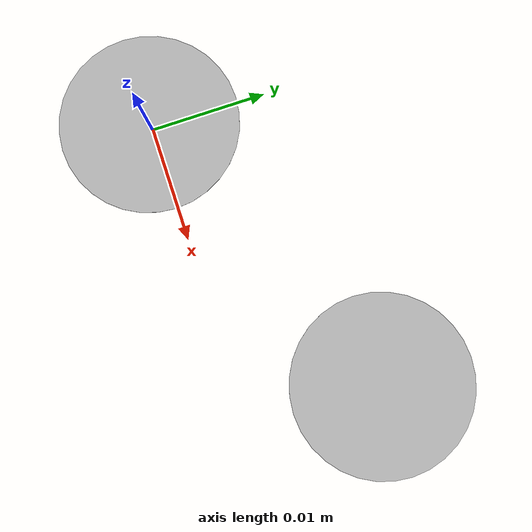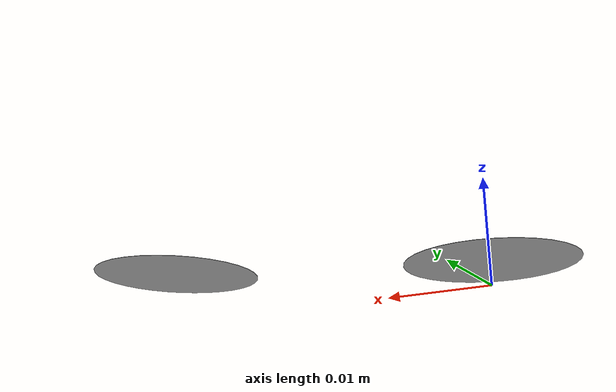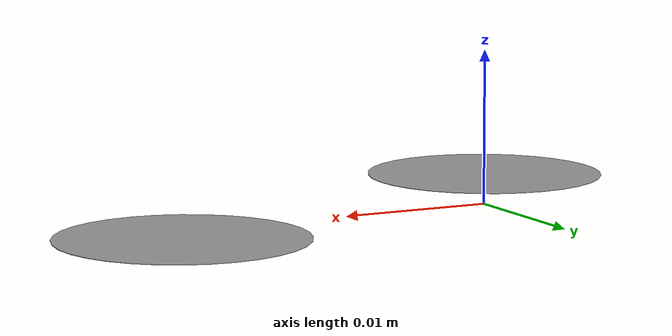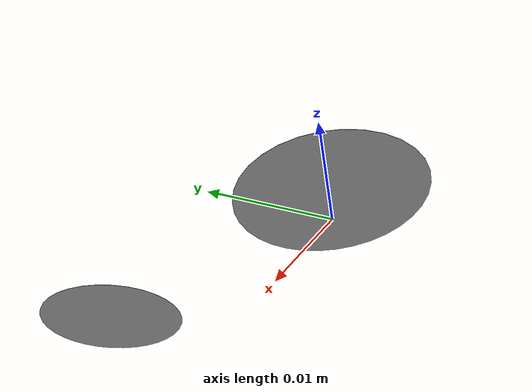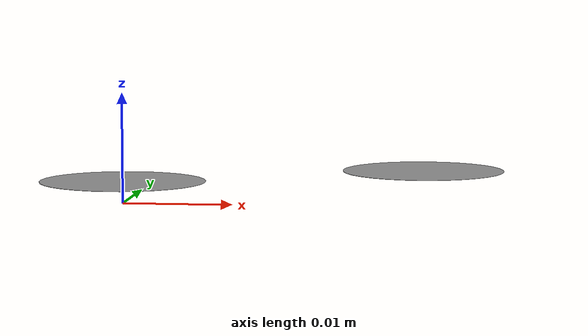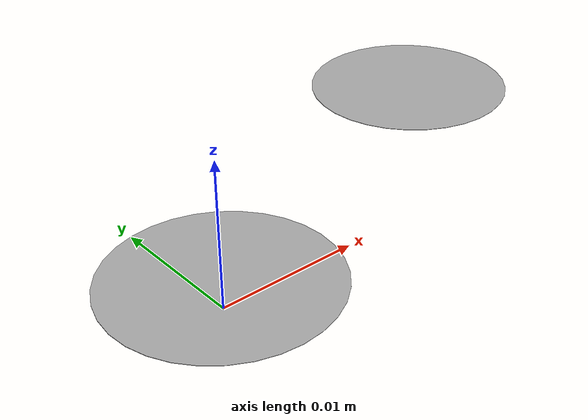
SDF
<?xml version="1.0"?>
<sdf version="1.4">
    <model name="led">
      <pose>0 0 0 0 0 0</pose>
      <static>true</static>
      <link name="link">
        <visual name="visual1">
          <pose>0 0 0.002 1.57 0 0</pose>
          <geometry>
            <mesh>
              <uri>model://led/meshes/led.obj</uri>
              <scale>3 3 3</scale>
            </mesh>
          </geometry>
        </visual>

        <visual name="visual2">
          <pose>0.026382 0.011354 0.002 1.57 0 0</pose>
          <geometry>
            <mesh>
              <uri>model://led/meshes/led.obj</uri>
              <scale>3 3 3</scale>
            </mesh>
          </geometry>
        </visual>
      </link>
    </model>
</sdf>
